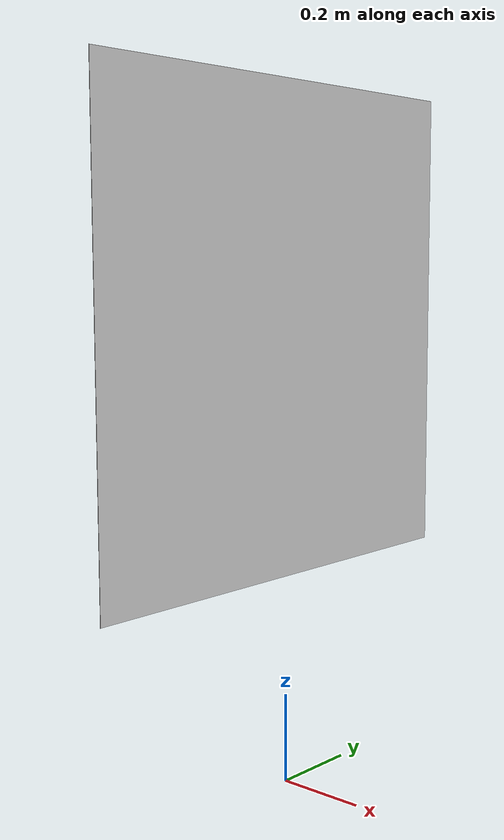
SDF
<?xml version='1.0'?>
<sdf version='1.4'>
  <model name="dolan">
    <static>true</static>
    <pose>0 0 1 0 0 0</pose>
    <link name="picture">
      <pose>0 0 0 -1.5707963267948966 0 0</pose>
      <visual name='visual'>
        <geometry>
          <mesh>
            <uri>
              model://dolan/meshes/dolan.dae
            </uri>
            <scale>1 5 5</scale>
          </mesh>
        </geometry>
      </visual>
    </link>
  </model>
</sdf>
